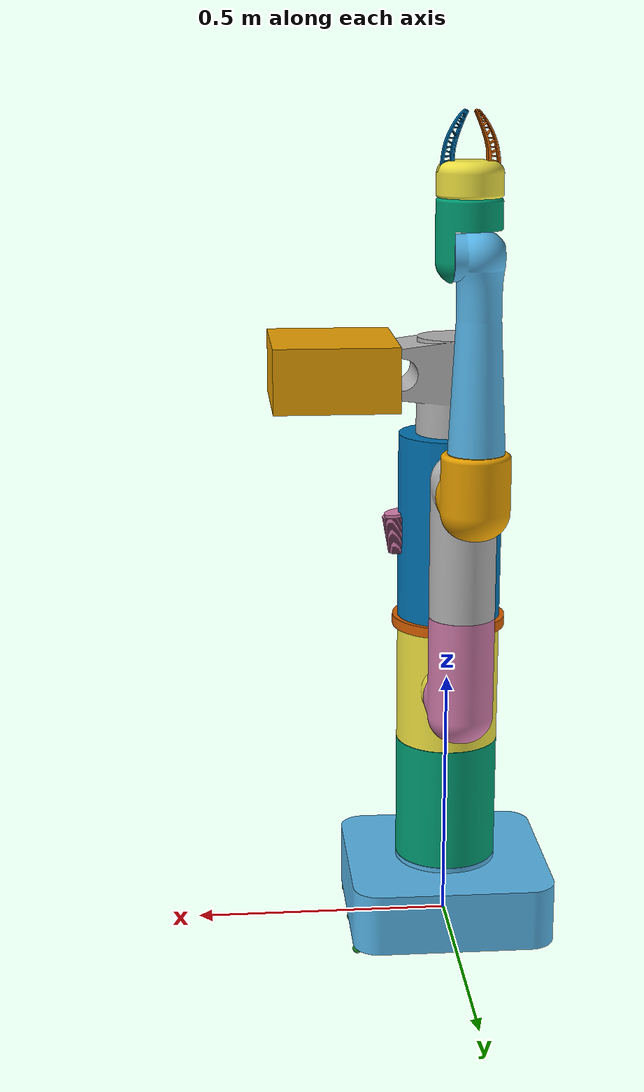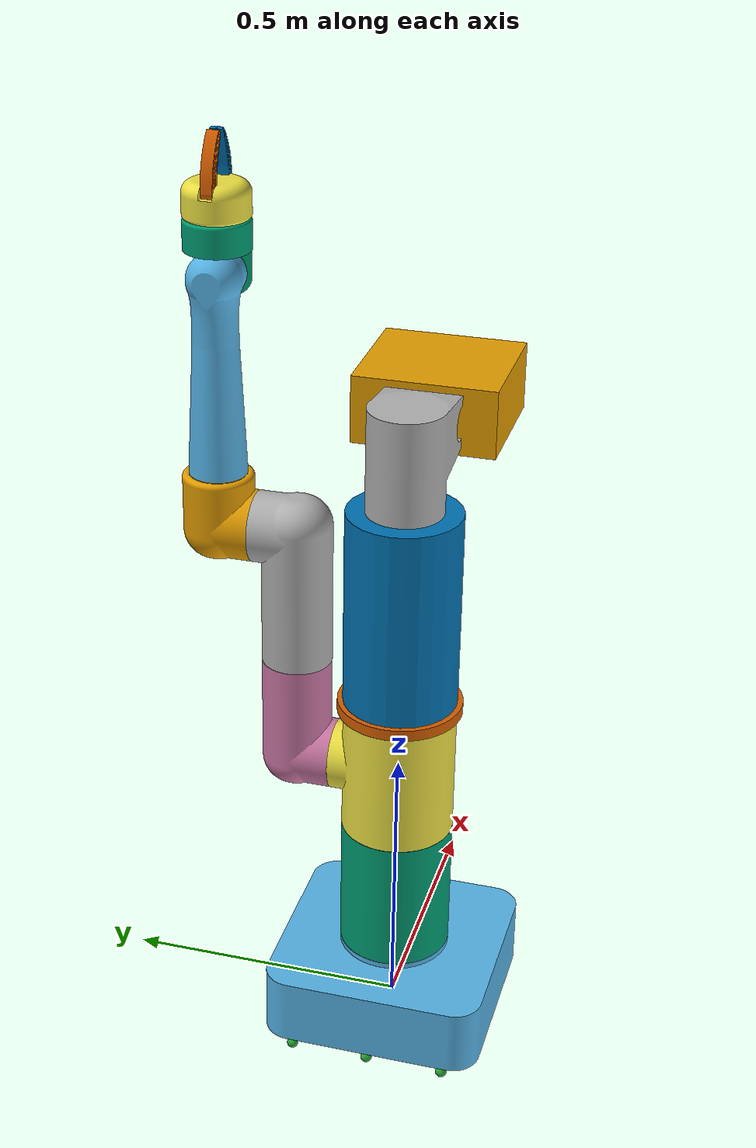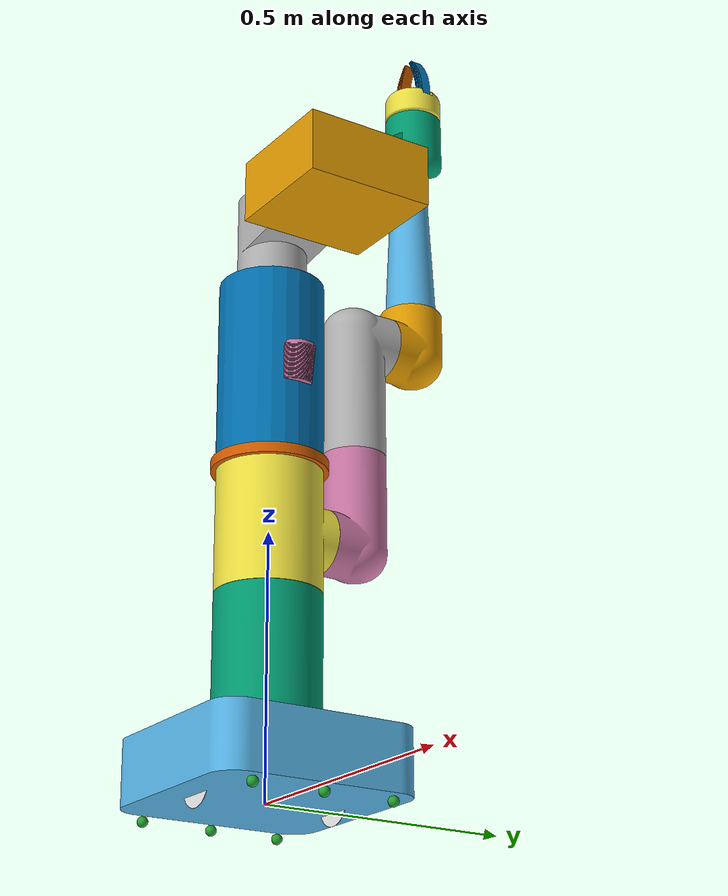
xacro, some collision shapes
<?xml version="1.0" ?>
<robot name="deepmind_bot" xmlns:xacro="http://www.ros.org/wiki/xacro">

    <xacro:arg name="robot_name" default="deepmind_bot_default"/>
    <xacro:property name="general_robot_name" value="$(arg robot_name)"/>

    <xacro:include filename="$(find deepmind_bot_description)/robot/materials.xacro" />
    <xacro:include filename="$(find deepmind_bot_description)/robot/properties.xacro" />
    <xacro:include filename="$(find deepmind_bot_description)/robot/properties_common.xacro" />
    <xacro:include filename="$(find deepmind_bot_description)/robot/macros.xacro" />
    <xacro:include filename="$(find deepmind_bot_description)/robot/wheels.xacro" />
    <xacro:include filename="$(find deepmind_bot_description)/robot/caster_wheels.xacro" />
    <xacro:include filename="$(find deepmind_bot_description)/robot/deepmind_bot_base.xacro" />
    <xacro:include filename="$(find deepmind_bot_description)/robot/deepmind_bot_body.xacro" />
    <xacro:include filename="$(find deepmind_bot_description)/robot/sensors.xacro" />
    <xacro:include filename="$(find deepmind_bot_description)/robot/deepmind_bot.gazebo" />

    <xacro:deepmind_bot_base robot_name="$(arg robot_name)"/>

    <xacro:deepmind_bot_body parent="$(arg robot_name)_chassis" origin_xyz="0 0 0.133428" robot_name="$(arg robot_name)"/>

    <xacro:wheel parent="$(arg robot_name)_chassis" child="$(arg robot_name)_right_wheel" origin_xyz="0 ${-1.0 * base_box_x*0.7 / 2.0} ${wheel_dis}" robot_name="$(arg robot_name)" name_wheel_link="right_wheel" r="${wheel_radius}" l="${wheel_width}" incr="${wheel_increment}"/>
    <xacro:wheel parent="$(arg robot_name)_chassis" child="$(arg robot_name)_left_wheel" origin_xyz="0 ${base_box_x*0.7 / 2.0} ${wheel_dis}" robot_name="$(arg robot_name)" name_wheel_link="left_wheel" r="${wheel_radius}" l="${wheel_width}" incr="${wheel_increment}"/>
    <xacro:caster_wheel robot_name="$(arg robot_name)" parent="$(arg robot_name)_chassis" caster_wheel_name="front" origin_xyz="${(base_box_x / 2.0) - wheel_increment} 0 ${-1.0*(wheel_radius-wheel_dis)}" radius="${wheel_increment}" legth="${dummy_length}"/>
    <xacro:caster_wheel robot_name="$(arg robot_name)" parent="$(arg robot_name)_chassis" caster_wheel_name="back" origin_xyz="${(-1.0 *base_box_x / 2.0) + wheel_increment} 0 ${-1.0*(wheel_radius-wheel_dis)}" radius="${wheel_increment}" legth="${dummy_length}"/>
    <xacro:caster_wheel robot_name="$(arg robot_name)" parent="$(arg robot_name)_chassis" caster_wheel_name="frontl" origin_xyz="${(base_box_x / 2.0) - wheel_increment} ${base_box_x*0.7 / 2.0} ${-1.0*(wheel_radius-wheel_dis)}" radius="${wheel_increment}" legth="${dummy_length}"/>
    <xacro:caster_wheel robot_name="$(arg robot_name)" parent="$(arg robot_name)_chassis" caster_wheel_name="backl" origin_xyz="${(-1.0 *base_box_x / 2.0) + wheel_increment} ${base_box_x*0.7 / 2.0} ${-1.0*(wheel_radius-wheel_dis)}" radius="${wheel_increment}" legth="${dummy_length}"/>
    <xacro:caster_wheel robot_name="$(arg robot_name)" parent="$(arg robot_name)_chassis" caster_wheel_name="frontr" origin_xyz="${(base_box_x / 2.0) - wheel_increment} ${-1.0 * base_box_x*0.7 / 2.0} ${-1.0*(wheel_radius-wheel_dis)}" radius="${wheel_increment}" legth="${dummy_length}"/>
    <xacro:caster_wheel robot_name="$(arg robot_name)" parent="$(arg robot_name)_chassis" caster_wheel_name="backr" origin_xyz="${(-1.0 *base_box_x / 2.0) + wheel_increment} ${-1.0 * base_box_x*0.7 / 2.0} ${-1.0*(wheel_radius-wheel_dis)}" radius="${wheel_increment}" legth="${dummy_length}"/>

    <xacro:deepmind_bot_gazebo_systems robot_name="$(arg robot_name)"/>

    <xacro:camera_rgb robot_name="$(arg robot_name)" parent_name="$(arg robot_name)_head" origin_xyz="0.013264 -0.20236 0.016" camera_ROLL="0.0" camera_PITCH="0.0" camera_YAW="-1.57"/>

    <xacro:include filename="$(find deepmind_bot_description)/robot/deepmind_bot_arm.xacro" />
    <xacro:deepmind_bot_arm parent="$(arg robot_name)_middle_base" origin_xyz="0.11504 0 0.1227" yaw_angle="3.1416" robot_name="$(arg robot_name)"/>

    <xacro:include filename="$(find deepmind_bot_description)/robot/deepmind_bot_with_arm.ros2_control.xacro" />
    <xacro:config_ctr_gazebo robot_name="$(arg robot_name)"/>

    <gazebo>
        <plugin name="gazebo_ros2_control" filename="libgazebo_ros2_control.so">
            <robot_sim_type>gazebo_ros2_control/GazeboSystem</robot_sim_type>
            <parameters>$(find deepmind_bot_description)/config/controller_configuration_with_arm.yaml</parameters>
        </plugin>
    </gazebo>

</robot>

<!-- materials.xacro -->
<robot>
  <material name="red">
      <color rgba="1.0 0.0 0.0 1"/>
  </material>

  <material name="green_light">
      <color rgba="0.0 1.0 0.0 1"/>
  </material>

  <material name="green_dark">
    <color rgba="0.0 0.5 0.0 1"/>
  </material>

  <material name="blue">
      <color rgba="0.0 0.0 1.0 1"/>
  </material>

  <material name="yellow">
      <color rgba="1.0 1.0 0.0 1"/>
  </material>

  <material name="black">
      <color rgba="0.0 0.0 0.0 1"/>
  </material>

  <material name="white">
      <color rgba="1.0 1.0 1.0 1"/>
  </material>

  <material name="box_bot_blue">
      <color rgba="0.088656 0.428691 0.491021 1"/>
  </material>
</robot>

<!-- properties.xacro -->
<robot xmlns:xacro="http://www.ros.org/wiki/xacro">

	<!-- Base Box -->
     <xacro:property name="base_box_factor" value="1.0"/>

</robot>

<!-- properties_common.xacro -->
<robot xmlns:xacro="http://www.ros.org/wiki/xacro">

	<!-- Constants -->
	<xacro:property name="PI" value="3.1415926535897931"/>
    <xacro:property name="base_name" value="chassis"/>
    <xacro:property name="base_box_mass" value="${base_box_factor * 1.0}"/>
    <xacro:property name="base_box_x" value="${base_box_factor * 0.3972}"/>
    <xacro:property name="base_box_y" value="${base_box_factor * 0.3972}"/>
    <xacro:property name="base_box_z" value="${base_box_factor * 0.1327}"/>

    <!-- Wheels -->
	<xacro:property name="wheel_radius" value="${base_box_z / 4.0}"/>
    <xacro:property name="wheel_width" value="0.001"/>
    <xacro:property name="wheel_dis_factor" value="0.6"/>
    <xacro:property name="wheel_dis" value="${wheel_radius*wheel_dis_factor}"/>

    <xacro:property name="wheel_increment" value="0.010"/>
    <xacro:property name="mu1_wheel" value="0.5"/>
    <xacro:property name="mu2_wheel" value="0.5"/>
    <xacro:property name="kp_wheel" value="10000000000000000000000000.0"/>
    <xacro:property name="kd_wheel" value="10000000000000000000000000.0"/>

    <xacro:property name="wheel_separation" value="${base_box_x}"/>
    <xacro:property name="wheel_diameter" value="${(base_box_z / 2.0) + 2.0 * wheel_increment}"/>
    <xacro:property name="max_wheel_torque" value="1.0"/>
    <xacro:property name="max_wheel_acceleration" value="2.0"/>

    <!--Caster Wheels-->
    <xacro:property name="dummy_length" value="0.001"/>

    <!-- Sensors -->
    <xacro:property name="sensor_mass" value="0.01"/>
    <xacro:property name="camera_box_x" value="0.02"/>
    <xacro:property name="camera_box_y" value="0.01"/>
    <xacro:property name="camera_box_z" value="0.01"/>

    <!-- Oberc Astra-->
    <xacro:property name="orbbec_astra_scale" value="1.0"/>
    <!-- RGB sensor - cam -->
    <xacro:property name="orbbec_astra_rel_rgb_px"   value="0.0" />
    <xacro:property name="orbbec_astra_rel_rgb_py"   value="-0.0125" />
    <xacro:property name="orbbec_astra_rel_rgb_pz"   value="-0.0150" />
    <!-- IR sensor - depth -->
    <xacro:property name="orbbec_astra_depth_rel_rgb_px" value="0.0" />
    <xacro:property name="orbbec_astra_depth_rel_rgb_py" value="0.0250" />
    <xacro:property name="orbbec_astra_depth_rel_rgb_pz" value="0.0" />

    <xacro:property name="M_PI" value="3.1415926535897931" />

    <!-- Arms -->
    <xacro:property name="arm_effort" value="0.1" />

</robot>

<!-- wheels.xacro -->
<robot xmlns:xacro="http://www.ros.org/wiki/xacro">

    <!-- Wheels-->
    <xacro:macro  name="wheel" params="parent child origin_xyz robot_name name_wheel_link r l incr">
      <link name="${robot_name}_${name_wheel_link}">
          <inertial>
            <mass value="0.2"/>
            <origin rpy="0 1.5707 1.5707" xyz="0 0 0"/>
              <xacro:cylinder_inertia mass="0.2" r="${r}" l="${l}" />
          </inertial>
          <collision name="${robot_name}_${name_wheel_link}_collision">
            <origin rpy="0 1.5707 1.5707" xyz="0 0 0"/>
            <geometry>
              <cylinder length="${l}" radius="${r + incr}"/>
            </geometry>
          </collision>
          <visual name="${robot_name}_${name_wheel_link}_visual">
            <origin rpy="0 1.5707 1.5707" xyz="0 0 0"/>
            <geometry>
              <cylinder length="${l}" radius="${r + incr}"/>
            </geometry>
          </visual>
      </link>

      <gazebo reference="${robot_name}_${name_wheel_link}">
        <kp>${kp_wheel}</kp>
        <kd>${kd_wheel}</kd>
        <mu1>${mu1_wheel}</mu1>
        <mu2>${mu2_wheel}</mu2>
        <material>Gazebo/White</material>
      </gazebo>

      <joint name="${robot_name}_${name_wheel_link}_joint" type="continuous">
        <origin rpy="0 0 0" xyz="${origin_xyz}"/>
        <child link="${robot_name}_${name_wheel_link}"/>
        <parent link="${parent}"/>
        <axis rpy="0 0 0" xyz="0 1 0"/>
        <limit effort="10000" velocity="1000"/>
        <joint_properties damping="1.0" friction="1.0"/>
      </joint>

  </xacro:macro >

</robot>

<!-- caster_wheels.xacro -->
<robot xmlns:xacro="http://www.ros.org/wiki/xacro">

    <!-- Caster Wheels-->
    <xacro:macro  name="caster_wheel" params="robot_name parent caster_wheel_name origin_xyz radius legth">
      <!-- CASTER FRONT-->
      <link name="${robot_name}_${caster_wheel_name}_yaw_link">
        <inertial>
            <mass value="0.001"/>
            <origin rpy="0 1.5707 1.5707" xyz="0 0 0"/>
            <xacro:cylinder_inertia mass="0.001" r="${0.9 * radius/2.0}" l="${legth}" />
          </inertial>
          <collision name="${robot_name}_${caster_wheel_name}_collision">
            <origin rpy="0 1.5707 1.5707" xyz="0 0 0"/>
            <geometry>
              <cylinder length="${legth}" radius="${0.9 * radius/2.0}"/>
            </geometry>
          </collision>
      </link>

      <joint name="${robot_name}_${caster_wheel_name}_yaw_joint" type="continuous">
        <origin rpy="0 0 0" xyz="${origin_xyz}" />
        <parent link="${parent}" />
        <child link="${robot_name}_${caster_wheel_name}_yaw_link" />
        <axis xyz="0 0 1" />
        <limit effort="1000.0" velocity="100.0" />
        <dynamics damping="0.0" friction="0.1"/>
      </joint>

      <transmission name="${robot_name}_${caster_wheel_name}_yaw_joint_trans">
      <type>transmission_interface/SimpleTransmission</type>
      <joint name="${robot_name}_${caster_wheel_name}_yaw_joint">
        <hardwareInterface>EffortJointInterface</hardwareInterface>
      </joint>
      <actuator name="${robot_name}_${caster_wheel_name}_yaw_jointMotor">
        <hardwareInterface>EffortJointInterface</hardwareInterface>
        <mechanicalReduction>1</mechanicalReduction>
      </actuator>
    </transmission>

    <link name="${robot_name}_${caster_wheel_name}_roll_link">
        <inertial>
            <mass value="0.001"/>
            <origin rpy="0 1.5707 1.5707" xyz="0 0 0"/>
            <xacro:cylinder_inertia mass="0.001" r="${0.9 * radius/2.0}" l="${legth}" />
          </inertial>
          <collision name="link_right_wheel_collision">
            <origin rpy="0 1.5707 1.5707" xyz="0 0 0"/>
            <geometry>
              <cylinder length="${legth}" radius="${0.9 * radius/2.0}"/>
            </geometry>
          </collision>
      </link>

      <joint name="${robot_name}_${caster_wheel_name}_roll_joint" type="continuous">
        <origin rpy="0 0 0" xyz="0 0 0" />
        <parent link="${robot_name}_${caster_wheel_name}_yaw_link" />
        <child link="${robot_name}_${caster_wheel_name}_roll_link" />
        <axis xyz="1 0 0" />
        <limit effort="1000.0" velocity="100.0" />
        <dynamics damping="0.0" friction="0.1"/>
      </joint>

      <transmission name="${robot_name}_${caster_wheel_name}_roll_joint_trans">
      <type>transmission_interface/SimpleTransmission</type>
      <joint name="${robot_name}_${caster_wheel_name}_roll_joint">
        <hardwareInterface>EffortJointInterface</hardwareInterface>
      </joint>
      <actuator name="${robot_name}_${caster_wheel_name}_roll_jointMotor">
        <hardwareInterface>EffortJointInterface</hardwareInterface>
        <mechanicalReduction>1</mechanicalReduction>
      </actuator>
    </transmission>

      <link name="${robot_name}_${caster_wheel_name}_pitch_link">
        <inertial>
          <mass value="0.001"/>
          <origin rpy="0 1.5707 1.5707" xyz="0 0 0"/>
            <xacro:sphere_inertia mass="0.001" r="${radius}"/>
        </inertial>
        <collision name="${robot_name}_${caster_wheel_name}_collision">
          <origin rpy="0 1.5707 1.5707" xyz="0 0 0"/>
          <geometry>
            <sphere radius="${radius}"/>
          </geometry>
        </collision>
        <visual name="${robot_name}_${caster_wheel_name}_visual">
          <origin rpy="0 1.5707 1.5707" xyz="0 0 0"/>
          <geometry>
            <sphere radius="${radius}"/>
          </geometry>
        </visual>
      </link>

      <joint name="${robot_name}_${caster_wheel_name}_pitch_joint" type="continuous">
        <origin rpy="0 0 0" xyz="0 0 0" />
        <parent link="${robot_name}_${caster_wheel_name}_roll_link" />
        <child link="${robot_name}_${caster_wheel_name}_pitch_link" />
        <axis xyz="0 1 0" />
        <limit effort="1000.0" velocity="100.0" />
        <dynamics damping="0.0" friction="0.1"/>
      </joint>

    <transmission name="${robot_name}_${caster_wheel_name}_pitch_joint_trans">
      <type>transmission_interface/SimpleTransmission</type>
      <joint name="${robot_name}_${caster_wheel_name}_pitch_joint">
        <hardwareInterface>EffortJointInterface</hardwareInterface>
      </joint>
      <actuator name="${robot_name}_${caster_wheel_name}_pitch_jointMotor">
        <hardwareInterface>EffortJointInterface</hardwareInterface>
        <mechanicalReduction>1</mechanicalReduction>
      </actuator>
    </transmission>

    <gazebo reference="${robot_name}_${caster_wheel_name}_pitch_link">
      <kp>1000000000000000000000000000.0</kp>
      <kd>1000000000000000000000000000.0</kd>
      <mu1>${mu1_wheel}</mu1>
      <mu2>${mu2_wheel}</mu2>
      <material>Gazebo/Green</material>
    </gazebo>

        <ros2_control name="${robot_name}_${caster_wheel_name}_system" type="system">
			<hardware>
				<plugin>gazebo_ros2_control/GazeboSystem</plugin>
	    	</hardware>

	    	<joint name="${robot_name}_${caster_wheel_name}_pitch_joint">
	    		<command_interface name="position">
	    			<param name="min">-3.14</param>
	    			<param name="max">3.14</param>
	    		</command_interface>
	    		<state_interface name="position">
                  <param name="initial_value">0.0</param>
                </state_interface>
	    		<state_interface name="velocity"/>
	    		<state_interface name="effort"/>
	    	</joint>

	    	<joint name="${robot_name}_${caster_wheel_name}_roll_joint">
	    		<command_interface name="position">
	    			<param name="min">-3.14</param>
	    			<param name="max">3.14</param>
	    		</command_interface>
	    		<state_interface name="position">
                  <param name="initial_value">0.0</param>
                </state_interface>
	    		<state_interface name="velocity"/>
	    		<state_interface name="effort"/>
	    	</joint>

            <joint name="${robot_name}_${caster_wheel_name}_yaw_joint">
	    		<command_interface name="position">
	    			<param name="min">-3.14</param>
	    			<param name="max">3.14</param>
	    		</command_interface>
	    		<state_interface name="position">
                  <param name="initial_value">0.0</param>
                </state_interface>
	    		<state_interface name="velocity"/>
	    		<state_interface name="effort"/>
	    	</joint>

	  	</ros2_control>

  </xacro:macro >

</robot>

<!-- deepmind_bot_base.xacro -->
<robot xmlns:xacro="http://www.ros.org/wiki/xacro">

    <xacro:macro  name="deepmind_bot_base" params="robot_name">

      <link name="${robot_name}_base_link">
      </link>

      <link name="${robot_name}_chassis">
        <visual>
          <geometry>
              <mesh filename="package://deepmind_bot_description/meshes/mobile_base.dae" scale="${base_box_factor} ${base_box_factor} ${base_box_factor}"/>
          </geometry>
        </visual>

        <collision>
          <origin rpy="0 0 0" xyz="0 0 0.03"/>
          <geometry>
           <box size="0.397 0.397 0.05"/>
          </geometry>
        </collision>

        <inertial>
          <mass value="10.0"/>
          <origin rpy="0 0 0" xyz="0 0 0"/>
          <inertia ixx="0.146082" ixy="0" ixz="0" iyy="0.146082" iyz="0" izz="0.2626816666666667"/>
        </inertial>

      </link>

      <joint name="${robot_name}_base_link_joint" type="fixed">
        <origin rpy="0 0 0" xyz="0 0 0" />
        <parent link="${robot_name}_base_link" />
        <child link="${robot_name}_chassis" />
      </joint>

    </xacro:macro >

</robot>

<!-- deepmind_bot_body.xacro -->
<robot xmlns:xacro="http://www.ros.org/wiki/xacro">

    <xacro:macro  name="deepmind_bot_body" params="parent origin_xyz robot_name">

      <link name="${robot_name}_bottom_base">
        <visual>
          <geometry>
              <mesh filename="package://deepmind_bot_description/meshes/bottom_base.dae" scale="${base_box_factor} ${base_box_factor} ${base_box_factor}"/>
          </geometry>
        </visual>

        <collision>
          <origin rpy="0 0 0" xyz="0 0 0.1225"/>
          <geometry>
              <cylinder length="0.245" radius="0.1"/>
          </geometry>
        </collision>

        <inertial>
          <mass value="0.5"/>
          <origin rpy="0 0 0" xyz="0 0 0"/>
          <inertia ixx="0.0008333333333333335" ixy="0" ixz="0" iyy="0.0008333333333333335" iyz="0" izz="0.0008333333333333335"/>
        </inertial>

      </link>

      <joint name="${robot_name}_bottom_base_joint" type="fixed">
        <origin rpy="0 0 0" xyz="${origin_xyz}" />
        <parent link="${parent}" />
        <child link="${robot_name}_bottom_base" />
      </joint>

      <!-- Middle -->

      <link name="${robot_name}_middle_base">
        <visual>
          <geometry>
              <mesh filename="package://deepmind_bot_description/meshes/middle_base.dae" scale="${base_box_factor} ${base_box_factor} ${base_box_factor}"/>
          </geometry>
        </visual>

        <collision>
          <origin rpy="0 0 0" xyz="0 0 0.107"/>
          <geometry>
              <cylinder length="0.245" radius="0.1"/>
          </geometry>
        </collision>

        <inertial>
          <mass value="0.5"/>
          <origin rpy="0 0 0" xyz="0 0 0"/>
          <inertia ixx="0.0008333333333333335" ixy="0" ixz="0" iyy="0.0008333333333333335" iyz="0" izz="0.0008333333333333335"/>
        </inertial>

      </link>

      <joint name="${robot_name}_middle_base_joint" type="revolute">
        <safety_controller k_position="100.0" k_velocity="40.0" soft_lower_limit="-2.8973" soft_upper_limit="2.8973" />
        <origin rpy="0 0 1.57" xyz="0 0 0.245867" />
        <parent link="${robot_name}_bottom_base" />
        <child link="${robot_name}_middle_base" />
        <axis xyz="0 0 1" />
        <limit effort="87" lower="-2.9671" upper="2.9671" velocity="2.3925" />
      </joint>

      <!-- LaserBase -->

      <link name="${robot_name}_laser_base">
        <visual>
          <geometry>
              <mesh filename="package://deepmind_bot_description/meshes/laser_base.dae" scale="${base_box_factor} ${base_box_factor} ${base_box_factor}"/>
          </geometry>
        </visual>

        <collision>
          <origin rpy="0 0 0" xyz="0 0 0.184"/>
          <geometry>
              <cylinder length="0.368" radius="0.1"/>
          </geometry>
        </collision>

        <inertial>
          <mass value="0.5"/>
          <origin rpy="0 0 0" xyz="0 0 0"/>
          <inertia ixx="0.0008333333333333335" ixy="0" ixz="0" iyy="0.0008333333333333335" iyz="0" izz="0.0008333333333333335"/>
        </inertial>

      </link>

      <joint name="${robot_name}_laser_base_joint" type="fixed">
        <origin rpy="0 0 1.57" xyz="0 0 0.49196" />
        <parent link="${robot_name}_bottom_base" />
        <child link="${robot_name}_laser_base" />
      </joint>

    <!-- Separator -->

      <link name="${robot_name}_separator_ring_link">
        <visual>
          <geometry>
              <mesh filename="package://deepmind_bot_description/meshes/separator_ring.dae" scale="${base_box_factor} ${base_box_factor} ${base_box_factor}"/>
          </geometry>
        </visual>

      </link>

      <joint name="${robot_name}__separator_ring_joint" type="fixed">
        <origin rpy="0 0 0" xyz="0 0 0.23554" />
        <parent link="${robot_name}_middle_base" />
        <child link="${robot_name}_separator_ring_link" />
        <axis xyz="0 0 1" />
        <limit effort="87" velocity="2.3925" />
      </joint>

      <!-- Laser -->

      <link name="${robot_name}_laser">
        <visual>
          <geometry>
              <mesh filename="package://deepmind_bot_description/meshes/laser.dae" scale="${base_box_factor} ${base_box_factor} ${base_box_factor}"/>
          </geometry>
        </visual>

      </link>

      <joint name="${robot_name}_laser_joint" type="fixed">
        <origin rpy="0.175527 0 0" xyz="0 -0.088567 0.14095" />
        <parent link="${robot_name}_laser_base" />
        <child link="${robot_name}_laser" />
      </joint>

    <!-- Head Base -->

      <link name="${robot_name}_head_base">
        <visual>
          <geometry>
              <mesh filename="package://deepmind_bot_description/meshes/head_base.dae" scale="${base_box_factor} ${base_box_factor} ${base_box_factor}"/>
          </geometry>
        </visual>

        <collision>
          <origin rpy="0 0 0" xyz="0 0 0.092"/>
          <geometry>
              <cylinder length="0.184" radius="0.08"/>
          </geometry>
        </collision>

        <inertial>
          <mass value="0.05"/>
          <origin rpy="0 0 0" xyz="0 0 0.035"/>
          <inertia ixx="3.166666666666667e-05" ixy="0" ixz="0" iyy="3.166666666666667e-05" iyz="0" izz="2.25e-05"/>
        </inertial>

      </link>

      <joint name="${robot_name}_head_base_joint" type="revolute">
        <origin rpy="0 0 0" xyz="0 0 0.3685" />
        <parent link="${robot_name}_laser_base" />
        <child link="${robot_name}_head_base" />
        <axis xyz="0 0 1" />
        <limit effort="87" lower="-2.9671" upper="2.9671" velocity="2.3925" />
        <dynamics friction="3.48"/>
      </joint>

    <!-- Head  -->

      <link name="${robot_name}_head">
        <visual>
          <geometry>
              <mesh filename="package://deepmind_bot_description/meshes/head.dae" scale="${base_box_factor} ${base_box_factor} ${base_box_factor}"/>
          </geometry>
        </visual>

        <collision>
          <origin rpy="0 0 0" xyz="0 -0.126 0"/>
          <geometry>
            <box size="0.252 0.234 0.121"/>
          </geometry>
        </collision>

        <inertial>
          <mass value="0.05"/>
          <origin rpy="0 0 0" xyz="0 0 0"/>
          <inertia ixx="3.166666666666667e-05" ixy="0" ixz="0" iyy="3.166666666666667e-05" iyz="0" izz="2.25e-05"/>
        </inertial>

      </link>

      <joint name="${robot_name}_head_joint" type="revolute">
        <origin rpy="0 0 0" xyz="0 -0.1 0.12256" />
        <parent link="${robot_name}_head_base" />
        <child link="${robot_name}_head" />
        <axis xyz="1 0 0" />
        <limit effort="87" lower="-1.57" upper="1.57" velocity="2.3925" />
        <dynamics friction="3.48"/>
      </joint>

    </xacro:macro >

</robot>

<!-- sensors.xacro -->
<robot xmlns:xacro="http://www.ros.org/wiki/xacro">

  <xacro:macro name="camera_rgb" params="robot_name parent_name origin_xyz camera_ROLL camera_PITCH camera_YAW">

    <link name="${robot_name}_rgb_camera_link_frame">
    </link>

    <joint name="${robot_name}_rgb_camera_link_frame_joint" type="fixed">
        <origin rpy="${camera_ROLL} ${camera_PITCH} ${camera_YAW}" xyz="${origin_xyz}"/>
        <parent link="${parent_name}" />
        <child link="${robot_name}_rgb_camera_link_frame" />
        <axis xyz="0 0 0"/>
    </joint>

    <gazebo reference="${robot_name}_rgb_camera_link_frame">
        <sensor name="${robot_name}_camera" type="camera">
          <camera>
            <horizontal_fov>1.3962634</horizontal_fov> <!-- Field of view -->
            <image>
              <width>640</width>
              <height>480</height>
              <format>R8G8B8</format>
            </image>
            <clip>
              <near>0.02</near>
              <far>25.0</far>
            </clip>
            <always_on>1</always_on>
            <update_rate>24</update_rate>
          </camera>
          <plugin name="camera_controller" filename="libgazebo_ros_camera.so">
            <ros>
              <namespace>${robot_name}</namespace>
            </ros>
            <cameraName>${robot_name}_rgb_camera</cameraName>
            <imageTopicName>image_raw</imageTopicName>
            <cameraInfoTopicName>camera_info</cameraInfoTopicName>
            <frameName>${robot_name}_rgb_camera_link_frame</frameName>
            <hackBaseline>0.07</hackBaseline>
          </plugin>
        </sensor>
    </gazebo>

  </xacro:macro>

  <xacro:macro name="camera_rgb_wideangle" params="robot_name parent_name origin_xyz camera_ROLL camera_PITCH camera_YAW">

    <link name="${robot_name}_rgb_wa_camera_link_frame">
    </link>

    <joint name="${robot_name}_rgb_wa_camera_link_frame_joint" type="fixed">
        <origin rpy="${camera_ROLL} ${camera_PITCH} ${camera_YAW}" xyz="${origin_xyz}"/>
        <parent link="${parent_name}" />
        <child link="${robot_name}_rgb_wa_camera_link_frame" />
        <axis xyz="0 0 0"/>
    </joint>

    <gazebo reference="${robot_name}_rgb_wa_camera_link_frame">
        <sensor name="${robot_name}_camera" type="wideanglecamera">
          <camera>
            <horizontal_fov>1.0472</horizontal_fov>
            <image>
              <width>320</width>
              <height>240</height>
            </image>
            <clip>
              <near>0.1</near>
              <far>100</far>
            </clip>
            <lens>
              <type>custom</type>
              <custom_function>
                <c1>1.05</c1>
                <c2>4</c2>
                <f>1.0</f>
                <fun>tan</fun>
              </custom_function>
              <scale_to_hfov>true</scale_to_hfov>
              <cutoff_angle>3.1415</cutoff_angle>
              <env_texture_size>512</env_texture_size>
            </lens>
            <always_on>1</always_on>
            <update_rate>30</update_rate>
          </camera>
          <plugin name="camera_controller" filename="libgazebo_ros_camera.so">
            <ros>
              <namespace>${robot_name}</namespace>
            </ros>
            <cameraName>${robot_name}_rgb_camera</cameraName>
            <imageTopicName>image_raw</imageTopicName>
            <cameraInfoTopicName>camera_info</cameraInfoTopicName>
            <frameName>${robot_name}_rgb_wa_camera_link_frame</frameName>
            <hackBaseline>0.07</hackBaseline>
          </plugin>
        </sensor>
    </gazebo>

  </xacro:macro>

  <xacro:macro name="laser_scan" params="robot_name parent_name origin_xyz sensor_YAW">
      <link name="${robot_name}_laser_scan_model_link">
        <visual name="${robot_name}_visual_laser_scan_link">
          <origin rpy="0 0 0" xyz="0 0 0"/>
          <geometry>
            <mesh filename="package://deepmind_bot_description/meshes/laser.dae" scale="1.0 1.0 1.0"/>
          </geometry>
        </visual>

        <collision name="${robot_name}_collision_laser_scan_link">
          <origin rpy="0 0 0" xyz="0 0 0.0204"/>
          <geometry>
            <cylinder length="0.0758" radius="0.03"/>
          </geometry>
        </collision>

        <inertial>

          <mass value="0.01"/>
          <origin rpy="0 0 0" xyz="0 0 0.0204"/>
          <inertia ixx="6.066578520833334e-06" ixy="0" ixz="0" iyy="6.066578520833334e-06" iyz="0" izz="9.365128684166666e-06"/>
        </inertial>
      </link>

    <joint name="${robot_name}_laser_scan_model_link_joint" type="fixed">
        <origin xyz="${origin_xyz}" rpy="0 0 ${sensor_YAW}" />
        <parent link="${parent_name}" />
        <child link="${robot_name}_laser_scan_model_link" />
    </joint>

    <link name="${robot_name}_laser_scan_frame">
    </link>

    <joint name="${robot_name}_laser_scan_frame_joint" type="fixed">
        <origin xyz="0 0 0.03" rpy="0 0 ${sensor_YAW}" />
        <parent link="${robot_name}_laser_scan_model_link" />
        <child link="${robot_name}_laser_scan_frame" />
    </joint>

    <gazebo reference="${robot_name}_laser_scan_frame">
      <sensor name="sensor_ray" type="ray">
          <pose>0 0 0 0 0 0</pose>
          <ray>
            <scan>
              <horizontal>
                <samples>200</samples>
                <resolution>1.0</resolution>
                <min_angle>-2.2</min_angle>
                <max_angle>2.2</max_angle>
              </horizontal>
            </scan>
            <range>
              <min>0.1</min>
              <max>30.0</max>
            </range>
          </ray>
          <always_on>true</always_on>
          <visualize>true</visualize>
          <update_rate>100.0</update_rate>
          <plugin name="laser" filename="libgazebo_ros_ray_sensor.so">
            <ros>
              <namespace>${robot_name}</namespace>
              <remapping>~/out:=laser_scan</remapping>
            </ros>
            <frame_name>${robot_name}_laser_scan_frame</frame_name>
            <output_type>sensor_msgs/LaserScan</output_type>
          </plugin>
        </sensor>
    </gazebo>

  </xacro:macro>

<xacro:macro name="point_cloud_sensor" params="robot_name parent_name sensor_name origin_xyz sensor_YAW">

  <link name='${robot_name}_pointcloud_link'>
        <visual>
        <geometry>
            <cylinder length="0.01" radius="0.005"/>
        </geometry>
        </visual>
	</link>

  <joint name="${robot_name}_pointcloud_link_joint" type="fixed">
		<origin rpy="0 0 ${sensor_YAW}" xyz="${origin_xyz}"/>
		<parent link="${parent_name}"/>
		<child link="${robot_name}_pointcloud_link"/>
	</joint>

    <gazebo reference="${robot_name}_pointcloud_link">
        <sensor type="ray" name="${robot_name}_pointcloud_sensor">
            <ray>
            <scan>
                <horizontal>
                    <samples>50</samples>
                    <resolution>1.0</resolution>
                    <min_angle>-1.0</min_angle>
                    <max_angle>1.0</max_angle>
                </horizontal>
                <vertical>
                    <samples>50</samples>
                    <resolution>1.0</resolution>
                    <min_angle>-1.0</min_angle>
                    <max_angle>1.0</max_angle>
                </vertical>
            </scan>
            <range>
                <min>0.10</min>
                <max>5.0</max>
                <resolution>0.01</resolution>
            </range>
            <!-- Using gazebo's noise instead of plugin's -->
            <noise>
                <type>gaussian</type>
                <mean>0.0</mean>
                <stddev>0.01</stddev>
            </noise>
            </ray>
            <!-- Using gazebo's update rate instead of plugin's -->
            <update_rate>30</update_rate>
            <plugin name="gazebo_ros_block_laser_controller" filename="libgazebo_ros_ray_sensor.so">
            <!-- Change namespace and output topic so published topic is /rrbot/laser/pointcloud -->
            <ros>
                <namespace>${robot_name}</namespace>
                <argument>--ros-args --remap ~/out:=pointcloud</argument>

            </ros>
            <!-- Set output to sensor_msgs/PointCloud to get same output type as gazebo_ros_block_laser -->
            <output_type>sensor_msgs/PointCloud</output_type>
            <frame_name>${robot_name}_pointcloud_link</frame_name>
            <!-- min_intensity instead of hokuyoMinIntensity -->
            <min_intensity>100.0</min_intensity>
            </plugin>
        </sensor>
    </gazebo>

</xacro:macro>

<xacro:macro name="camera_rgbd" params="robot_name parent_name origin_xyz camera_ROLL camera_PITCH camera_YAW">

    <link name="${robot_name}_rgbd_camera_link_frame">
        <visual>
        <geometry>
            <cylinder length="0.01" radius="0.005"/>
        </geometry>
        </visual>
    </link>

    <joint name="${robot_name}_rgbd_camera_link_frame_joint" type="fixed">
        <origin rpy="${camera_ROLL} ${camera_PITCH} ${camera_YAW}" xyz="${origin_xyz}"/>
        <parent link="${parent_name}" />
        <child link="${robot_name}_rgbd_camera_link_frame" />
        <axis xyz="0 0 0"/>
    </joint>

    <!-- EXtra joints for rgbd camera -->
    <xacro:property name="r430_cam_depth_px" value="0.00"/>
    <xacro:property name="r430_cam_depth_py" value="-0.0115"/>
    <xacro:property name="r430_cam_depth_pz" value="0.0"/>

    <link name="${robot_name}_camera_depth_frame"/>

    <joint name="${robot_name}_camera_depth_joint" type="fixed">
      <origin xyz="${r430_cam_depth_px} ${r430_cam_depth_py} ${r430_cam_depth_pz}" rpy="0 0 0"/>
      <parent link="${robot_name}_rgbd_camera_link_frame"/>
      <child link="${robot_name}_camera_depth_frame" />
    </joint>

    <link name="${robot_name}_camera_depth_optical_frame"/>

    <joint name="${robot_name}_camera_depth_optical_joint" type="fixed">
      <origin xyz="0 0 0" rpy="${-M_PI/2} 0 ${-M_PI/2}" />
      <parent link="${robot_name}_camera_depth_frame" />
      <child link="${robot_name}_camera_depth_optical_frame" />
    </joint>

    <gazebo reference="${robot_name}_rgbd_camera_link_frame">
      <sensor type="depth" name="${robot_name}_depth_sensor">
        <always_on>true</always_on>
        <update_rate>5.0</update_rate>
        <camera>
          <horizontal_fov>${90.0*PI/260.0}</horizontal_fov>
          <image>
            <format>R8G8B8</format>
            <width>640</width>
            <height>480</height>
          </image>
          <clip>
            <near>0.01</near>
            <far>2.0</far>
          </clip>
        </camera>
        <plugin name="${robot_name}_rgbd_controller" filename="libgazebo_ros_camera.so">
          <cameraName>${robot_name}</cameraName>
          <alwaysOn>true</alwaysOn>
          <updateRate>10</updateRate>
          <imageTopicName>rgb/image_raw</imageTopicName>
          <depthImageTopicName>depth/image_raw</depthImageTopicName>
          <pointCloudTopicName>depth/points</pointCloudTopicName>
          <cameraInfoTopicName>rgb/camera_info</cameraInfoTopicName>
          <depthImageCameraInfoTopicName>depth/camera_info</depthImageCameraInfoTopicName>
          <frame_name>${robot_name}_camera_depth_optical_frame</frame_name>
          <baseline>0.1</baseline>
          <distortion_k1>0.0</distortion_k1>
          <distortion_k2>0.0</distortion_k2>
          <distortion_k3>0.0</distortion_k3>
          <distortion_t1>0.0</distortion_t1>
          <distortion_t2>0.0</distortion_t2>
          <pointCloudCutoff>0.1</pointCloudCutoff>
        </plugin>
      </sensor>
    </gazebo>

</xacro:macro>

</robot>

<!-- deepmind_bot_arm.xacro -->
<robot xmlns:xacro="http://www.ros.org/wiki/xacro">

    <xacro:macro  name="deepmind_bot_arm" params="parent origin_xyz yaw_angle robot_name">

      <link name="${robot_name}_arm1">
        <visual>
          <geometry>
              <mesh filename="package://deepmind_bot_description/meshes/arm1.dae" scale="${base_box_factor} ${base_box_factor} ${base_box_factor}"/>
          </geometry>
        </visual>

        <inertial>
          <mass value="0.03"/>
          <origin rpy="0 0 0" xyz="-0.071 0 0.1"/>
          <inertia ixx="0.000183229375" ixy="0" ixz="0" iyy="0.000183229375" iyz="0" izz="0.00006633375"/>
        </inertial>

      </link>

        <joint name="${robot_name}_arm1_joint" type="revolute">
            <safety_controller k_position="1000.0" k_velocity="400.0" soft_lower_limit="-2.8973" soft_upper_limit="2.8973" />
            <origin rpy="0 0 ${yaw_angle}" xyz="${origin_xyz}" />
            <parent link="${parent}" />
            <child link="${robot_name}_arm1" />
            <axis xyz="1 0 0" />
            <limit effort="${arm_effort}" lower="-2.9671" upper="2.9671" velocity="2.3925" />
        </joint>

        <link name="${robot_name}_arm2">
        <visual>
          <geometry>
              <mesh filename="package://deepmind_bot_description/meshes/arm2.dae" scale="${base_box_factor} ${base_box_factor} ${base_box_factor}"/>
          </geometry>
        </visual>

        <inertial>
          <mass value="0.03"/>
          <origin rpy="0 0 0" xyz="0 0 0.1535"/>
          <inertia ixx="0.000268789375" ixy="0" ixz="0" iyy="0.000268789375" iyz="0" izz="0.00006633375"/>
        </inertial>

      </link>

        <joint name="${robot_name}_arm2_joint" type="revolute">
            <safety_controller k_position="1000.0" k_velocity="400.0" soft_lower_limit="-2.8973" soft_upper_limit="2.8973" />
            <origin rpy="0 0 0" xyz="-0.07135 0 0.18406" />
            <parent link="${robot_name}_arm1" />
            <child link="${robot_name}_arm2" />
            <axis xyz="0 0 1" />
            <limit effort="${arm_effort}" lower="-2.9671" upper="2.9671" velocity="2.3925" />
        </joint>

        <link name="${robot_name}_arm3">
        <visual>
          <geometry>
              <mesh filename="package://deepmind_bot_description/meshes/arm3.dae" scale="${base_box_factor} ${base_box_factor} ${base_box_factor}"/>
          </geometry>
        </visual>

        <inertial>
          <mass value="0.02"/>
          <origin rpy="0 0 0" xyz="-0.06 0 0"/>
          <inertia ixx="0.00006" ixy="0" ixz="0" iyy="0.00006" iyz="0" izz="0.00004096"/>
        </inertial>

      </link>

        <joint name="${robot_name}_arm3_joint" type="revolute">
            <safety_controller k_position="1000.0" k_velocity="400.0" soft_lower_limit="-2.8973" soft_upper_limit="2.8973" />
            <origin rpy="0 0 0" xyz="-0.07135 0 0.2454" />
            <parent link="${robot_name}_arm2" />
            <child link="${robot_name}_arm3" />
            <axis xyz="1 0 0" />
            <limit effort="${arm_effort}" lower="-2.9671" upper="2.9671" velocity="2.3925" />
        </joint>

        <link name="${robot_name}_arm4">
        <visual>
          <geometry>
              <mesh filename="package://deepmind_bot_description/meshes/arm4.dae" scale="${base_box_factor} ${base_box_factor} ${base_box_factor}"/>
          </geometry>
        </visual>

        <inertial>
          <mass value="0.02"/>
          <origin rpy="0 0 0" xyz="0 0 0.191"/>
          <inertia ixx="0.00025571" ixy="0" ixz="0" iyy="0.00025571" iyz="0" izz="0.000025"/>
        </inertial>

      </link>

        <joint name="${robot_name}_arm4_joint" type="revolute">
            <safety_controller k_position="1000.0" k_velocity="400.0" soft_lower_limit="-2.8973" soft_upper_limit="2.8973" />
            <origin rpy="0 0 0" xyz="-0.066584 0 0.093033" />
            <parent link="${robot_name}_arm3" />
            <child link="${robot_name}_arm4" />
            <axis xyz="0 0 1" />
            <limit effort="${arm_effort}" lower="-2.9671" upper="2.9671" velocity="2.3925" />
        </joint>

        <link name="${robot_name}_arm5">
        <visual>
          <geometry>
              <mesh filename="package://deepmind_bot_description/meshes/arm5.dae" scale="${base_box_factor} ${base_box_factor} ${base_box_factor}"/>
          </geometry>
        </visual>

        <inertial>
          <mass value="0.01"/>
          <origin rpy="0 0 0" xyz="0 0.03 -0.0705"/>
          <inertia ixx="0.000024548125" ixy="0" ixz="0" iyy="0.000024548125" iyz="0" izz="0.000016"/>
        </inertial>

      </link>

        <joint name="${robot_name}_arm5_joint" type="revolute">
            <safety_controller k_position="1000.0" k_velocity="400.0" soft_lower_limit="-2.8973" soft_upper_limit="2.8973" />
            <origin rpy="0 3.1416 3.1416" xyz="0 0.0495 0.33512" />
            <parent link="${robot_name}_arm4" />
            <child link="${robot_name}_arm5" />
            <axis xyz="0 1 0" />
            <limit effort="${arm_effort}" lower="-2.9671" upper="2.9671" velocity="2.3925" />
        </joint>

        <link name="${robot_name}_arm6">
        <visual>
          <geometry>
              <mesh filename="package://deepmind_bot_description/meshes/arm6.dae" scale="${base_box_factor} ${base_box_factor} ${base_box_factor}"/>
          </geometry>
        </visual>

        <inertial>
          <mass value="0.01"/>
          <origin rpy="0 0 0" xyz="0 0 -0.03"/>
          <inertia ixx="0.000010980625" ixy="0" ixz="0" iyy="0.000010980625" iyz="0" izz="0.00001596125"/>
        </inertial>

      </link>

        <joint name="${robot_name}_arm6_joint" type="revolute">
            <safety_controller k_position="1000.0" k_velocity="400.0" soft_lower_limit="-2.8973" soft_upper_limit="2.8973" />
            <origin rpy="0 0 0" xyz="0 0.030218 -0.098925" />
            <parent link="${robot_name}_arm5" />
            <child link="${robot_name}_arm6" />
            <axis xyz="0 0 1" />
            <limit effort="${arm_effort}" lower="-2.9671" upper="2.9671" velocity="2.3925" />
        </joint>

        <!-- Gripper -->

        <link name="${robot_name}_gripper1">
        <visual>
          <geometry>
              <mesh filename="package://deepmind_bot_description/meshes/gripper.dae" scale="${base_box_factor} ${base_box_factor} ${base_box_factor}"/>
          </geometry>
        </visual>

        <inertial>
          <mass value="0.005"/>
          <origin rpy="0 0 0" xyz="0 0 0.051"/>
          <inertia ixx="4.555416666666666e-06" ixy="0" ixz="0" iyy="5.130704166666666e-06" iyz="0" izz="1.0161208333333335e-06"/>
        </inertial>

      </link>

        <joint name="${robot_name}_gripper1_joint" type="revolute">
            <safety_controller k_position="1000.0" k_velocity="400.0" soft_lower_limit="-0.9" soft_upper_limit="0.9" />
            <origin rpy="3.1416 0 -1.57" xyz="-0.010128 -0.039741 -0.049894" />
            <parent link="${robot_name}_arm6" />
            <child link="${robot_name}_gripper1" />
            <axis xyz="0 1 0" />
            <limit effort="${arm_effort}" lower="-1.0" upper="1.0" velocity="2.3925" />
        </joint>

        <link name="${robot_name}_gripper2">
        <visual>
          <geometry>
              <mesh filename="package://deepmind_bot_description/meshes/gripper.dae" scale="${base_box_factor} ${base_box_factor} ${base_box_factor}"/>
          </geometry>
        </visual>

        <inertial>
          <mass value="0.005"/>
          <origin rpy="0 0 0" xyz="0 0 0.051"/>
          <inertia ixx="4.555416666666666e-06" ixy="0" ixz="0" iyy="5.130704166666666e-06" iyz="0" izz="1.0161208333333335e-06"/>
        </inertial>

      </link>

        <joint name="${robot_name}_gripper2_joint" type="revolute">
            <safety_controller k_position="1000.0" k_velocity="400.0" soft_lower_limit="-0.9" soft_upper_limit="0.9" />
            <origin rpy="3.1416 0 1.57" xyz="0.010128 0.039741 -0.049894" />
            <parent link="${robot_name}_arm6" />
            <child link="${robot_name}_gripper2" />
            <axis xyz="0 1 0" />
            <limit effort="${arm_effort}" lower="-1.0" upper="1.0" velocity="2.3925" />
        </joint>

    </xacro:macro >

</robot>
